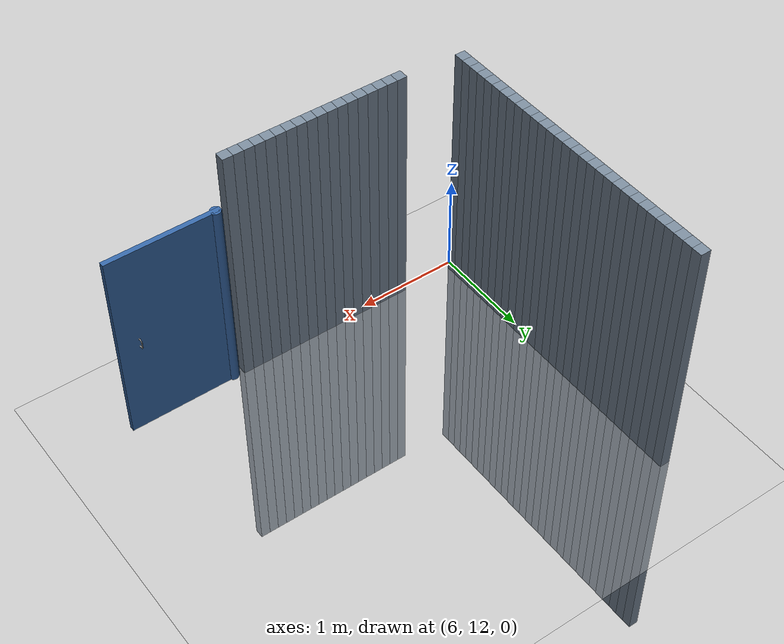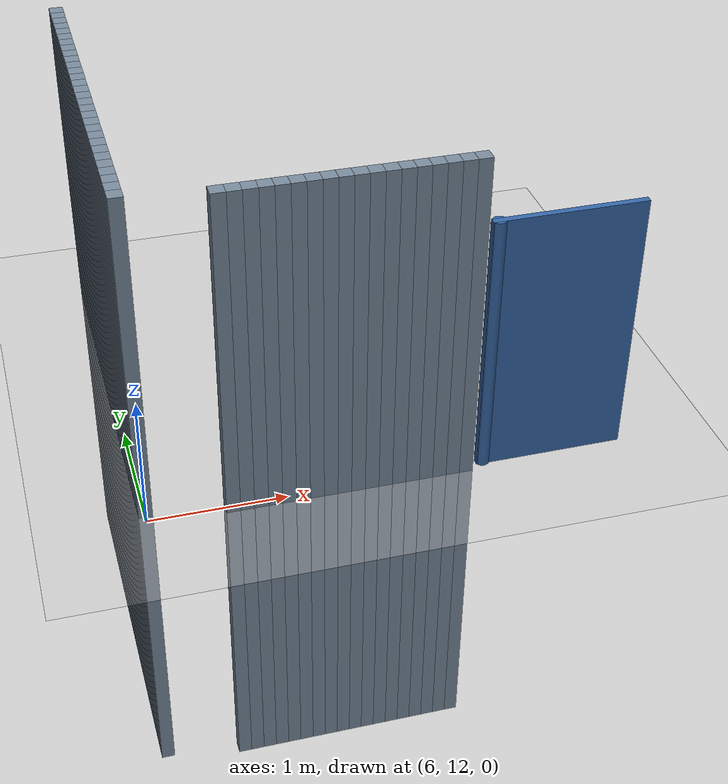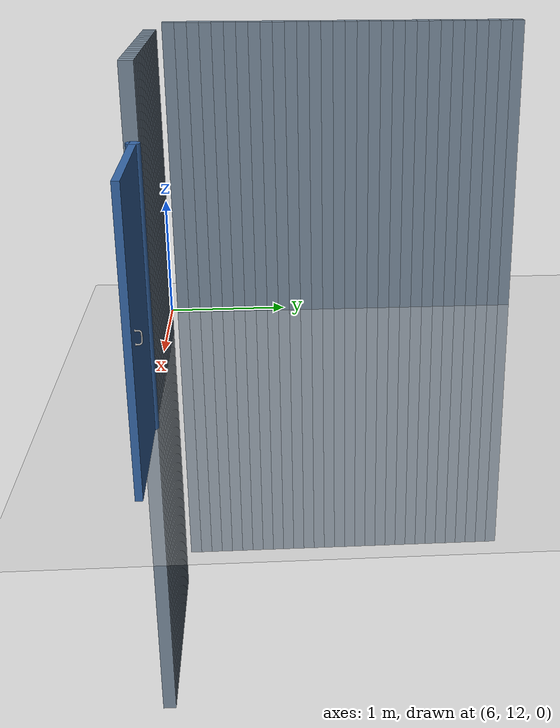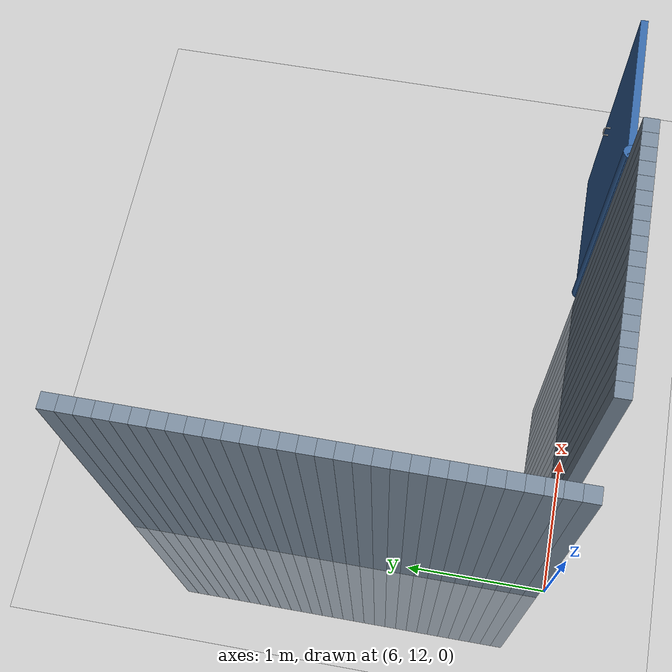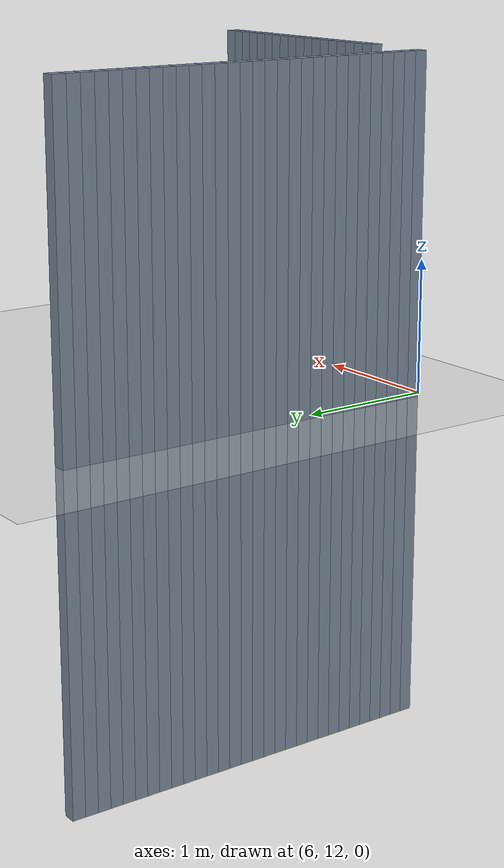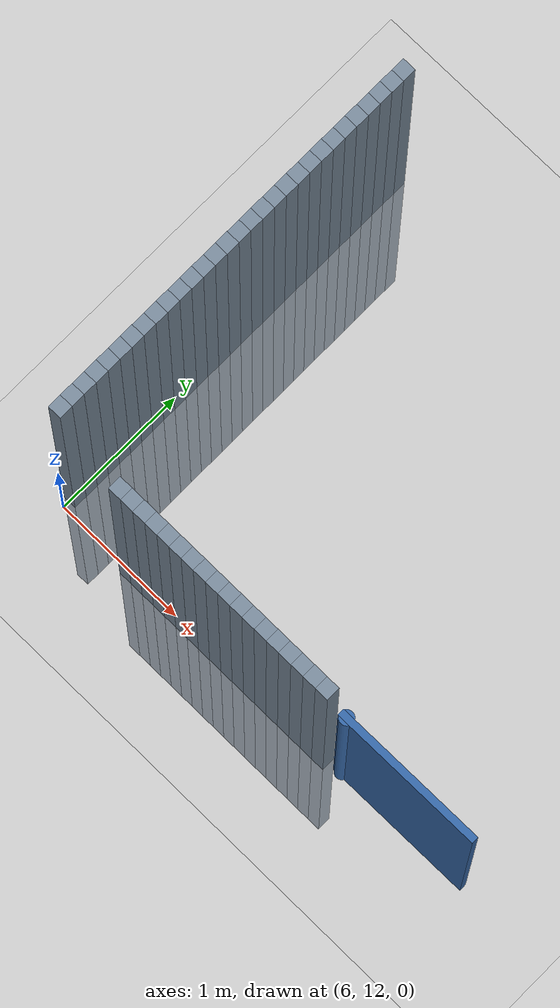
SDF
<sdf version="1.6">
 <world name="default">
  <model name="ground_plane">
   <static>1</static>
   <link name="link">
    <collision name="collision">
     <geometry><plane><normal>0 0 1</normal><size>100 100</size></plane></geometry>
     <surface><friction><ode><mu>100</mu><mu2>50</mu2></ode></friction></surface>
    </collision>
    <visual name="visual">
     <cast_shadows>0</cast_shadows>
     <geometry><plane><normal>0 0 1</normal><size>100 100</size></plane></geometry>
     <material>
      <script><uri>file://media/materials/scripts/gazebo.material</uri><name>Gazebo/Grey</name></script>
     </material>
    </visual>
   </link>
  </model>
  <model name="unit_cylinder_302">
   <static>1</static>
   <pose>6 12.1 0 0 -0 0</pose>
   <link name="link">
    <inertial>
     <mass>1</mass>
     <inertia><ixx>0.145833</ixx><ixy>0</ixy><ixz>0</ixz><iyy>0.145833</iyy><iyz>0</iyz><izz>0.125</izz></inertia>
    </inertial>
    <collision name="collision"><geometry><box><size>0.1 0.1 5</size></box></geometry></collision>
    <visual name="visual">
     <geometry><box><size>0.1 0.1 5</size></box></geometry>
     <material><ambient>0.466667 0.533333 0.6 1</ambient><diffuse>0.466667 0.533333 0.6 1</diffuse></material>
     <material>
      <script><name>Gazebo/Grey</name><uri>file://media/materials/scripts/gazebo.material</uri></script>
     </material>
    </visual>
   </link>
  </model>
  <model name="unit_cylinder_303">
   <static>1</static>
   <pose>6 12.2 0 0 -0 0</pose>
   <link name="link">
    <inertial>
     <mass>1</mass>
     <inertia><ixx>0.145833</ixx><ixy>0</ixy><ixz>0</ixz><iyy>0.145833</iyy><iyz>0</iyz><izz>0.125</izz></inertia>
    </inertial>
    <collision name="collision"><geometry><box><size>0.1 0.1 5</size></box></geometry></collision>
    <visual name="visual">
     <geometry><box><size>0.1 0.1 5</size></box></geometry>
     <material><ambient>0.466667 0.533333 0.6 1</ambient><diffuse>0.466667 0.533333 0.6 1</diffuse></material>
     <material>
      <script><name>Gazebo/Grey</name><uri>file://media/materials/scripts/gazebo.material</uri></script>
     </material>
    </visual>
   </link>
  </model>
  <model name="unit_cylinder_304">
   <static>1</static>
   <pose>6 12.3 0 0 -0 0</pose>
   <link name="link">
    <inertial>
     <mass>1</mass>
     <inertia><ixx>0.145833</ixx><ixy>0</ixy><ixz>0</ixz><iyy>0.145833</iyy><iyz>0</iyz><izz>0.125</izz></inertia>
    </inertial>
    <collision name="collision"><geometry><box><size>0.1 0.1 5</size></box></geometry></collision>
    <visual name="visual">
     <geometry><box><size>0.1 0.1 5</size></box></geometry>
     <material><ambient>0.466667 0.533333 0.6 1</ambient><diffuse>0.466667 0.533333 0.6 1</diffuse></material>
     <material>
      <script><name>Gazebo/Grey</name><uri>file://media/materials/scripts/gazebo.material</uri></script>
     </material>
    </visual>
   </link>
  </model>
  <model name="unit_cylinder_305">
   <static>1</static>
   <pose>6 12.4 0 0 -0 0</pose>
   <link name="link">
    <inertial>
     <mass>1</mass>
     <inertia><ixx>0.145833</ixx><ixy>0</ixy><ixz>0</ixz><iyy>0.145833</iyy><iyz>0</iyz><izz>0.125</izz></inertia>
    </inertial>
    <collision name="collision"><geometry><box><size>0.1 0.1 5</size></box></geometry></collision>
    <visual name="visual">
     <geometry><box><size>0.1 0.1 5</size></box></geometry>
     <material><ambient>0.466667 0.533333 0.6 1</ambient><diffuse>0.466667 0.533333 0.6 1</diffuse></material>
     <material>
      <script><name>Gazebo/Grey</name><uri>file://media/materials/scripts/gazebo.material</uri></script>
     </material>
    </visual>
   </link>
  </model>
  <model name="unit_cylinder_306">
   <static>1</static>
   <pose>6 12.5 0 0 -0 0</pose>
   <link name="link">
    <inertial>
     <mass>1</mass>
     <inertia><ixx>0.145833</ixx><ixy>0</ixy><ixz>0</ixz><iyy>0.145833</iyy><iyz>0</iyz><izz>0.125</izz></inertia>
    </inertial>
    <collision name="collision"><geometry><box><size>0.1 0.1 5</size></box></geometry></collision>
    <visual name="visual">
     <geometry><box><size>0.1 0.1 5</size></box></geometry>
     <material><ambient>0.466667 0.533333 0.6 1</ambient><diffuse>0.466667 0.533333 0.6 1</diffuse></material>
     <material>
      <script><name>Gazebo/Grey</name><uri>file://media/materials/scripts/gazebo.material</uri></script>
     </material>
    </visual>
   </link>
  </model>
  <model name="unit_cylinder_307">
   <static>1</static>
   <pose>6 12.6 0 0 -0 0</pose>
   <link name="link">
    <inertial>
     <mass>1</mass>
     <inertia><ixx>0.145833</ixx><ixy>0</ixy><ixz>0</ixz><iyy>0.145833</iyy><iyz>0</iyz><izz>0.125</izz></inertia>
    </inertial>
    <collision name="collision"><geometry><box><size>0.1 0.1 5</size></box></geometry></collision>
    <visual name="visual">
     <geometry><box><size>0.1 0.1 5</size></box></geometry>
     <material><ambient>0.466667 0.533333 0.6 1</ambient><diffuse>0.466667 0.533333 0.6 1</diffuse></material>
     <material>
      <script><name>Gazebo/Grey</name><uri>file://media/materials/scripts/gazebo.material</uri></script>
     </material>
    </visual>
   </link>
  </model>
  <model name="unit_cylinder_308">
   <static>1</static>
   <pose>6 12.7 0 0 -0 0</pose>
   <link name="link">
    <inertial>
     <mass>1</mass>
     <inertia><ixx>0.145833</ixx><ixy>0</ixy><ixz>0</ixz><iyy>0.145833</iyy><iyz>0</iyz><izz>0.125</izz></inertia>
    </inertial>
    <collision name="collision"><geometry><box><size>0.1 0.1 5</size></box></geometry></collision>
    <visual name="visual">
     <geometry><box><size>0.1 0.1 5</size></box></geometry>
     <material><ambient>0.466667 0.533333 0.6 1</ambient><diffuse>0.466667 0.533333 0.6 1</diffuse></material>
     <material>
      <script><name>Gazebo/Grey</name><uri>file://media/materials/scripts/gazebo.material</uri></script>
     </material>
    </visual>
   </link>
  </model>
  <model name="unit_cylinder_309">
   <static>1</static>
   <pose>6 12.8 0 0 -0 0</pose>
   <link name="link">
    <inertial>
     <mass>1</mass>
     <inertia><ixx>0.145833</ixx><ixy>0</ixy><ixz>0</ixz><iyy>0.145833</iyy><iyz>0</iyz><izz>0.125</izz></inertia>
    </inertial>
    <collision name="collision"><geometry><box><size>0.1 0.1 5</size></box></geometry></collision>
    <visual name="visual">
     <geometry><box><size>0.1 0.1 5</size></box></geometry>
     <material><ambient>0.466667 0.533333 0.6 1</ambient><diffuse>0.466667 0.533333 0.6 1</diffuse></material>
     <material>
      <script><name>Gazebo/Grey</name><uri>file://media/materials/scripts/gazebo.material</uri></script>
     </material>
    </visual>
   </link>
  </model>
  <model name="unit_cylinder_310">
   <static>1</static>
   <pose>6 12.9 0 0 -0 0</pose>
   <link name="link">
    <inertial>
     <mass>1</mass>
     <inertia><ixx>0.145833</ixx><ixy>0</ixy><ixz>0</ixz><iyy>0.145833</iyy><iyz>0</iyz><izz>0.125</izz></inertia>
    </inertial>
    <collision name="collision"><geometry><box><size>0.1 0.1 5</size></box></geometry></collision>
    <visual name="visual">
     <geometry><box><size>0.1 0.1 5</size></box></geometry>
     <material><ambient>0.466667 0.533333 0.6 1</ambient><diffuse>0.466667 0.533333 0.6 1</diffuse></material>
     <material>
      <script><name>Gazebo/Grey</name><uri>file://media/materials/scripts/gazebo.material</uri></script>
     </material>
    </visual>
   </link>
  </model>
  <model name="unit_cylinder_311">
   <static>1</static>
   <pose>6 13 0 0 -0 0</pose>
   <link name="link">
    <inertial>
     <mass>1</mass>
     <inertia><ixx>0.145833</ixx><ixy>0</ixy><ixz>0</ixz><iyy>0.145833</iyy><iyz>0</iyz><izz>0.125</izz></inertia>
    </inertial>
    <collision name="collision"><geometry><box><size>0.1 0.1 5</size></box></geometry></collision>
    <visual name="visual">
     <geometry><box><size>0.1 0.1 5</size></box></geometry>
     <material><ambient>0.466667 0.533333 0.6 1</ambient><diffuse>0.466667 0.533333 0.6 1</diffuse></material>
     <material>
      <script><name>Gazebo/Grey</name><uri>file://media/materials/scripts/gazebo.material</uri></script>
     </material>
    </visual>
   </link>
  </model>
  <model name="unit_cylinder_312">
   <static>1</static>
   <pose>6 13.1 0 0 -0 0</pose>
   <link name="link">
    <inertial>
     <mass>1</mass>
     <inertia><ixx>0.145833</ixx><ixy>0</ixy><ixz>0</ixz><iyy>0.145833</iyy><iyz>0</iyz><izz>0.125</izz></inertia>
    </inertial>
    <collision name="collision"><geometry><box><size>0.1 0.1 5</size></box></geometry></collision>
    <visual name="visual">
     <geometry><box><size>0.1 0.1 5</size></box></geometry>
     <material><ambient>0.466667 0.533333 0.6 1</ambient><diffuse>0.466667 0.533333 0.6 1</diffuse></material>
     <material>
      <script><name>Gazebo/Grey</name><uri>file://media/materials/scripts/gazebo.material</uri></script>
     </material>
    </visual>
   </link>
  </model>
  <model name="unit_cylinder_313">
   <static>1</static>
   <pose>6 13.2 0 0 -0 0</pose>
   <link name="link">
    <inertial>
     <mass>1</mass>
     <inertia><ixx>0.145833</ixx><ixy>0</ixy><ixz>0</ixz><iyy>0.145833</iyy><iyz>0</iyz><izz>0.125</izz></inertia>
    </inertial>
    <collision name="collision"><geometry><box><size>0.1 0.1 5</size></box></geometry></collision>
    <visual name="visual">
     <geometry><box><size>0.1 0.1 5</size></box></geometry>
     <material><ambient>0.466667 0.533333 0.6 1</ambient><diffuse>0.466667 0.533333 0.6 1</diffuse></material>
     <material>
      <script><name>Gazebo/Grey</name><uri>file://media/materials/scripts/gazebo.material</uri></script>
     </material>
    </visual>
   </link>
  </model>
  <model name="unit_cylinder_314">
   <static>1</static>
   <pose>6 13.3 0 0 -0 0</pose>
   <link name="link">
    <inertial>
     <mass>1</mass>
     <inertia><ixx>0.145833</ixx><ixy>0</ixy><ixz>0</ixz><iyy>0.145833</iyy><iyz>0</iyz><izz>0.125</izz></inertia>
    </inertial>
    <collision name="collision"><geometry><box><size>0.1 0.1 5</size></box></geometry></collision>
    <visual name="visual">
     <geometry><box><size>0.1 0.1 5</size></box></geometry>
     <material><ambient>0.466667 0.533333 0.6 1</ambient><diffuse>0.466667 0.533333 0.6 1</diffuse></material>
     <material>
      <script><name>Gazebo/Grey</name><uri>file://media/materials/scripts/gazebo.material</uri></script>
     </material>
    </visual>
   </link>
  </model>
  <model name="unit_cylinder_315">
   <static>1</static>
   <pose>6 13.4 0 0 -0 0</pose>
   <link name="link">
    <inertial>
     <mass>1</mass>
     <inertia><ixx>0.145833</ixx><ixy>0</ixy><ixz>0</ixz><iyy>0.145833</iyy><iyz>0</iyz><izz>0.125</izz></inertia>
    </inertial>
    <collision name="collision"><geometry><box><size>0.1 0.1 5</size></box></geometry></collision>
    <visual name="visual">
     <geometry><box><size>0.1 0.1 5</size></box></geometry>
     <material><ambient>0.466667 0.533333 0.6 1</ambient><diffuse>0.466667 0.533333 0.6 1</diffuse></material>
     <material>
      <script><name>Gazebo/Grey</name><uri>file://media/materials/scripts/gazebo.material</uri></script>
     </material>
    </visual>
   </link>
  </model>
  <model name="unit_cylinder_316">
   <static>1</static>
   <pose>6 13.5 0 0 -0 0</pose>
   <link name="link">
    <inertial>
     <mass>1</mass>
     <inertia><ixx>0.145833</ixx><ixy>0</ixy><ixz>0</ixz><iyy>0.145833</iyy><iyz>0</iyz><izz>0.125</izz></inertia>
    </inertial>
    <collision name="collision"><geometry><box><size>0.1 0.1 5</size></box></geometry></collision>
    <visual name="visual">
     <geometry><box><size>0.1 0.1 5</size></box></geometry>
     <material><ambient>0.466667 0.533333 0.6 1</ambient><diffuse>0.466667 0.533333 0.6 1</diffuse></material>
     <material>
      <script><name>Gazebo/Grey</name><uri>file://media/materials/scripts/gazebo.material</uri></script>
     </material>
    </visual>
   </link>
  </model>
  <model name="unit_cylinder_317">
   <static>1</static>
   <pose>6 13.6 0 0 -0 0</pose>
   <link name="link">
    <inertial>
     <mass>1</mass>
     <inertia><ixx>0.145833</ixx><ixy>0</ixy><ixz>0</ixz><iyy>0.145833</iyy><iyz>0</iyz><izz>0.125</izz></inertia>
    </inertial>
    <collision name="collision"><geometry><box><size>0.1 0.1 5</size></box></geometry></collision>
    <visual name="visual">
     <geometry><box><size>0.1 0.1 5</size></box></geometry>
     <material><ambient>0.466667 0.533333 0.6 1</ambient><diffuse>0.466667 0.533333 0.6 1</diffuse></material>
     <material>
      <script><name>Gazebo/Grey</name><uri>file://media/materials/scripts/gazebo.material</uri></script>
     </material>
    </visual>
   </link>
  </model>
  <model name="unit_cylinder_318">
   <static>1</static>
   <pose>6 13.7 0 0 -0 0</pose>
   <link name="link">
    <inertial>
     <mass>1</mass>
     <inertia><ixx>0.145833</ixx><ixy>0</ixy><ixz>0</ixz><iyy>0.145833</iyy><iyz>0</iyz><izz>0.125</izz></inertia>
    </inertial>
    <collision name="collision"><geometry><box><size>0.1 0.1 5</size></box></geometry></collision>
    <visual name="visual">
     <geometry><box><size>0.1 0.1 5</size></box></geometry>
     <material><ambient>0.466667 0.533333 0.6 1</ambient><diffuse>0.466667 0.533333 0.6 1</diffuse></material>
     <material>
      <script><name>Gazebo/Grey</name><uri>file://media/materials/scripts/gazebo.material</uri></script>
     </material>
    </visual>
   </link>
  </model>
  <model name="unit_cylinder_319">
   <static>1</static>
   <pose>6 13.8 0 0 -0 0</pose>
   <link name="link">
    <inertial>
     <mass>1</mass>
     <inertia><ixx>0.145833</ixx><ixy>0</ixy><ixz>0</ixz><iyy>0.145833</iyy><iyz>0</iyz><izz>0.125</izz></inertia>
    </inertial>
    <collision name="collision"><geometry><box><size>0.1 0.1 5</size></box></geometry></collision>
    <visual name="visual">
     <geometry><box><size>0.1 0.1 5</size></box></geometry>
     <material><ambient>0.466667 0.533333 0.6 1</ambient><diffuse>0.466667 0.533333 0.6 1</diffuse></material>
     <material>
      <script><name>Gazebo/Grey</name><uri>file://media/materials/scripts/gazebo.material</uri></script>
     </material>
    </visual>
   </link>
  </model>
  <model name="unit_cylinder_320">
   <static>1</static>
   <pose>6 13.9 0 0 -0 0</pose>
   <link name="link">
    <inertial>
     <mass>1</mass>
     <inertia><ixx>0.145833</ixx><ixy>0</ixy><ixz>0</ixz><iyy>0.145833</iyy><iyz>0</iyz><izz>0.125</izz></inertia>
    </inertial>
    <collision name="collision"><geometry><box><size>0.1 0.1 5</size></box></geometry></collision>
    <visual name="visual">
     <geometry><box><size>0.1 0.1 5</size></box></geometry>
     <material><ambient>0.466667 0.533333 0.6 1</ambient><diffuse>0.466667 0.533333 0.6 1</diffuse></material>
     <material>
      <script><name>Gazebo/Grey</name><uri>file://media/materials/scripts/gazebo.material</uri></script>
     </material>
    </visual>
   </link>
  </model>
  <model name="unit_cylinder_321">
   <static>1</static>
   <pose>6 14 0 0 -0 0</pose>
   <link name="link">
    <inertial>
     <mass>1</mass>
     <inertia><ixx>0.145833</ixx><ixy>0</ixy><ixz>0</ixz><iyy>0.145833</iyy><iyz>0</iyz><izz>0.125</izz></inertia>
    </inertial>
    <collision name="collision"><geometry><box><size>0.1 0.1 5</size></box></geometry></collision>
    <visual name="visual">
     <geometry><box><size>0.1 0.1 5</size></box></geometry>
     <material><ambient>0.466667 0.533333 0.6 1</ambient><diffuse>0.466667 0.533333 0.6 1</diffuse></material>
     <material>
      <script><name>Gazebo/Grey</name><uri>file://media/materials/scripts/gazebo.material</uri></script>
     </material>
    </visual>
   </link>
  </model>
  <model name="unit_cylinder_322">
   <static>1</static>
   <pose>6 14.1 0 0 -0 0</pose>
   <link name="link">
    <inertial>
     <mass>1</mass>
     <inertia><ixx>0.145833</ixx><ixy>0</ixy><ixz>0</ixz><iyy>0.145833</iyy><iyz>0</iyz><izz>0.125</izz></inertia>
    </inertial>
    <collision name="collision"><geometry><box><size>0.1 0.1 5</size></box></geometry></collision>
    <visual name="visual">
     <geometry><box><size>0.1 0.1 5</size></box></geometry>
     <material><ambient>0.466667 0.533333 0.6 1</ambient><diffuse>0.466667 0.533333 0.6 1</diffuse></material>
     <material>
      <script><name>Gazebo/Grey</name><uri>file://media/materials/scripts/gazebo.material</uri></script>
     </material>
    </visual>
   </link>
  </model>
  <model name="unit_cylinder_323">
   <static>1</static>
   <pose>6 14.2 0 0 -0 0</pose>
   <link name="link">
    <inertial>
     <mass>1</mass>
     <inertia><ixx>0.145833</ixx><ixy>0</ixy><ixz>0</ixz><iyy>0.145833</iyy><iyz>0</iyz><izz>0.125</izz></inertia>
    </inertial>
    <collision name="collision"><geometry><box><size>0.1 0.1 5</size></box></geometry></collision>
    <visual name="visual">
     <geometry><box><size>0.1 0.1 5</size></box></geometry>
     <material><ambient>0.466667 0.533333 0.6 1</ambient><diffuse>0.466667 0.533333 0.6 1</diffuse></material>
     <material>
      <script><name>Gazebo/Grey</name><uri>file://media/materials/scripts/gazebo.material</uri></script>
     </material>
    </visual>
   </link>
  </model>
  <model name="unit_cylinder_324">
   <static>1</static>
   <pose>6 14.3 0 0 -0 0</pose>
   <link name="link">
    <inertial>
     <mass>1</mass>
     <inertia><ixx>0.145833</ixx><ixy>0</ixy><ixz>0</ixz><iyy>0.145833</iyy><iyz>0</iyz><izz>0.125</izz></inertia>
    </inertial>
    <collision name="collision"><geometry><box><size>0.1 0.1 5</size></box></geometry></collision>
    <visual name="visual">
     <geometry><box><size>0.1 0.1 5</size></box></geometry>
     <material><ambient>0.466667 0.533333 0.6 1</ambient><diffuse>0.466667 0.533333 0.6 1</diffuse></material>
     <material>
      <script><name>Gazebo/Grey</name><uri>file://media/materials/scripts/gazebo.material</uri></script>
     </material>
    </visual>
   </link>
  </model>
  <model name="unit_cylinder_325">
   <static>1</static>
   <pose>6 14.4 0 0 -0 0</pose>
   <link name="link">
    <inertial>
     <mass>1</mass>
     <inertia><ixx>0.145833</ixx><ixy>0</ixy><ixz>0</ixz><iyy>0.145833</iyy><iyz>0</iyz><izz>0.125</izz></inertia>
    </inertial>
    <collision name="collision"><geometry><box><size>0.1 0.1 5</size></box></geometry></collision>
    <visual name="visual">
     <geometry><box><size>0.1 0.1 5</size></box></geometry>
     <material><ambient>0.466667 0.533333 0.6 1</ambient><diffuse>0.466667 0.533333 0.6 1</diffuse></material>
     <material>
      <script><name>Gazebo/Grey</name><uri>file://media/materials/scripts/gazebo.material</uri></script>
     </material>
    </visual>
   </link>
  </model>
  <model name="unit_cylinder_326">
   <static>1</static>
   <pose>6 14.5 0 0 -0 0</pose>
   <link name="link">
    <inertial>
     <mass>1</mass>
     <inertia><ixx>0.145833</ixx><ixy>0</ixy><ixz>0</ixz><iyy>0.145833</iyy><iyz>0</iyz><izz>0.125</izz></inertia>
    </inertial>
    <collision name="collision"><geometry><box><size>0.1 0.1 5</size></box></geometry></collision>
    <visual name="visual">
     <geometry><box><size>0.1 0.1 5</size></box></geometry>
     <material><ambient>0.466667 0.533333 0.6 1</ambient><diffuse>0.466667 0.533333 0.6 1</diffuse></material>
     <material>
      <script><name>Gazebo/Grey</name><uri>file://media/materials/scripts/gazebo.material</uri></script>
     </material>
    </visual>
   </link>
  </model>
  <model name="unit_cylinder_327">
   <static>1</static>
   <pose>6 14.6 0 0 -0 0</pose>
   <link name="link">
    <inertial>
     <mass>1</mass>
     <inertia><ixx>0.145833</ixx><ixy>0</ixy><ixz>0</ixz><iyy>0.145833</iyy><iyz>0</iyz><izz>0.125</izz></inertia>
    </inertial>
    <collision name="collision"><geometry><box><size>0.1 0.1 5</size></box></geometry></collision>
    <visual name="visual">
     <geometry><box><size>0.1 0.1 5</size></box></geometry>
     <material><ambient>0.466667 0.533333 0.6 1</ambient><diffuse>0.466667 0.533333 0.6 1</diffuse></material>
     <material>
      <script><name>Gazebo/Grey</name><uri>file://media/materials/scripts/gazebo.material</uri></script>
     </material>
    </visual>
   </link>
  </model>
  <model name="unit_cylinder_328">
   <static>1</static>
   <pose>6 14.7 0 0 -0 0</pose>
   <link name="link">
    <inertial>
     <mass>1</mass>
     <inertia><ixx>0.145833</ixx><ixy>0</ixy><ixz>0</ixz><iyy>0.145833</iyy><iyz>0</iyz><izz>0.125</izz></inertia>
    </inertial>
    <collision name="collision"><geometry><box><size>0.1 0.1 5</size></box></geometry></collision>
    <visual name="visual">
     <geometry><box><size>0.1 0.1 5</size></box></geometry>
     <material><ambient>0.466667 0.533333 0.6 1</ambient><diffuse>0.466667 0.533333 0.6 1</diffuse></material>
     <material>
      <script><name>Gazebo/Grey</name><uri>file://media/materials/scripts/gazebo.material</uri></script>
     </material>
    </visual>
   </link>
  </model>
  <model name="unit_cylinder_329">
   <static>1</static>
   <pose>6 14.8 0 0 -0 0</pose>
   <link name="link">
    <inertial>
     <mass>1</mass>
     <inertia><ixx>0.145833</ixx><ixy>0</ixy><ixz>0</ixz><iyy>0.145833</iyy><iyz>0</iyz><izz>0.125</izz></inertia>
    </inertial>
    <collision name="collision"><geometry><box><size>0.1 0.1 5</size></box></geometry></collision>
    <visual name="visual">
     <geometry><box><size>0.1 0.1 5</size></box></geometry>
     <material><ambient>0.466667 0.533333 0.6 1</ambient><diffuse>0.466667 0.533333 0.6 1</diffuse></material>
     <material>
      <script><name>Gazebo/Grey</name><uri>file://media/materials/scripts/gazebo.material</uri></script>
     </material>
    </visual>
   </link>
  </model>
  <model name="unit_cylinder_330">
   <static>1</static>
   <pose>6 14.9 0 0 -0 0</pose>
   <link name="link">
    <inertial>
     <mass>1</mass>
     <inertia><ixx>0.145833</ixx><ixy>0</ixy><ixz>0</ixz><iyy>0.145833</iyy><iyz>0</iyz><izz>0.125</izz></inertia>
    </inertial>
    <collision name="collision"><geometry><box><size>0.1 0.1 5</size></box></geometry></collision>
    <visual name="visual">
     <geometry><box><size>0.1 0.1 5</size></box></geometry>
     <material><ambient>0.466667 0.533333 0.6 1</ambient><diffuse>0.466667 0.533333 0.6 1</diffuse></material>
     <material>
      <script><name>Gazebo/Grey</name><uri>file://media/materials/scripts/gazebo.material</uri></script>
     </material>
    </visual>
   </link>
  </model>
  <model name="unit_cylinder_331">
   <static>1</static>
   <pose>6 15 0 0 -0 0</pose>
   <link name="link">
    <inertial>
     <mass>1</mass>
     <inertia><ixx>0.145833</ixx><ixy>0</ixy><ixz>0</ixz><iyy>0.145833</iyy><iyz>0</iyz><izz>0.125</izz></inertia>
    </inertial>
    <collision name="collision"><geometry><box><size>0.1 0.1 5</size></box></geometry></collision>
    <visual name="visual">
     <geometry><box><size>0.1 0.1 5</size></box></geometry>
     <material><ambient>0.466667 0.533333 0.6 1</ambient><diffuse>0.466667 0.533333 0.6 1</diffuse></material>
     <material>
      <script><name>Gazebo/Grey</name><uri>file://media/materials/scripts/gazebo.material</uri></script>
     </material>
    </visual>
   </link>
  </model>
  <model name="unit_cylinder_384">
   <static>1</static>
   <pose>6.6 12 0 0 -0 0</pose>
   <link name="link">
    <inertial>
     <mass>1</mass>
     <inertia><ixx>0.145833</ixx><ixy>0</ixy><ixz>0</ixz><iyy>0.145833</iyy><iyz>0</iyz><izz>0.125</izz></inertia>
    </inertial>
    <collision name="collision"><geometry><box><size>0.1 0.1 5</size></box></geometry></collision>
    <visual name="visual">
     <geometry><box><size>0.1 0.1 5</size></box></geometry>
     <material><ambient>0.466667 0.533333 0.6 1</ambient><diffuse>0.466667 0.533333 0.6 1</diffuse></material>
     <material>
      <script><name>Gazebo/Grey</name><uri>file://media/materials/scripts/gazebo.material</uri></script>
     </material>
    </visual>
   </link>
  </model>
  <model name="unit_cylinder_388">
   <static>1</static>
   <pose>6.7 12 0 0 -0 0</pose>
   <link name="link">
    <inertial>
     <mass>1</mass>
     <inertia><ixx>0.145833</ixx><ixy>0</ixy><ixz>0</ixz><iyy>0.145833</iyy><iyz>0</iyz><izz>0.125</izz></inertia>
    </inertial>
    <collision name="collision"><geometry><box><size>0.1 0.1 5</size></box></geometry></collision>
    <visual name="visual">
     <geometry><box><size>0.1 0.1 5</size></box></geometry>
     <material><ambient>0.466667 0.533333 0.6 1</ambient><diffuse>0.466667 0.533333 0.6 1</diffuse></material>
     <material>
      <script><name>Gazebo/Grey</name><uri>file://media/materials/scripts/gazebo.material</uri></script>
     </material>
    </visual>
   </link>
  </model>
  <model name="unit_cylinder_392">
   <static>1</static>
   <pose>6.8 12 0 0 -0 0</pose>
   <link name="link">
    <inertial>
     <mass>1</mass>
     <inertia><ixx>0.145833</ixx><ixy>0</ixy><ixz>0</ixz><iyy>0.145833</iyy><iyz>0</iyz><izz>0.125</izz></inertia>
    </inertial>
    <collision name="collision"><geometry><box><size>0.1 0.1 5</size></box></geometry></collision>
    <visual name="visual">
     <geometry><box><size>0.1 0.1 5</size></box></geometry>
     <material><ambient>0.466667 0.533333 0.6 1</ambient><diffuse>0.466667 0.533333 0.6 1</diffuse></material>
     <material>
      <script><name>Gazebo/Grey</name><uri>file://media/materials/scripts/gazebo.material</uri></script>
     </material>
    </visual>
   </link>
  </model>
  <model name="unit_cylinder_396">
   <static>1</static>
   <pose>6.9 12 0 0 -0 0</pose>
   <link name="link">
    <inertial>
     <mass>1</mass>
     <inertia><ixx>0.145833</ixx><ixy>0</ixy><ixz>0</ixz><iyy>0.145833</iyy><iyz>0</iyz><izz>0.125</izz></inertia>
    </inertial>
    <collision name="collision"><geometry><box><size>0.1 0.1 5</size></box></geometry></collision>
    <visual name="visual">
     <geometry><box><size>0.1 0.1 5</size></box></geometry>
     <material><ambient>0.466667 0.533333 0.6 1</ambient><diffuse>0.466667 0.533333 0.6 1</diffuse></material>
     <material>
      <script><name>Gazebo/Grey</name><uri>file://media/materials/scripts/gazebo.material</uri></script>
     </material>
    </visual>
   </link>
  </model>
  <model name="unit_cylinder_400">
   <static>1</static>
   <pose>7 12 0 0 -0 0</pose>
   <link name="link">
    <inertial>
     <mass>1</mass>
     <inertia><ixx>0.145833</ixx><ixy>0</ixy><ixz>0</ixz><iyy>0.145833</iyy><iyz>0</iyz><izz>0.125</izz></inertia>
    </inertial>
    <collision name="collision"><geometry><box><size>0.1 0.1 5</size></box></geometry></collision>
    <visual name="visual">
     <geometry><box><size>0.1 0.1 5</size></box></geometry>
     <material><ambient>0.466667 0.533333 0.6 1</ambient><diffuse>0.466667 0.533333 0.6 1</diffuse></material>
     <material>
      <script><name>Gazebo/Grey</name><uri>file://media/materials/scripts/gazebo.material</uri></script>
     </material>
    </visual>
   </link>
  </model>
  <model name="unit_cylinder_404">
   <static>1</static>
   <pose>7.1 12 0 0 -0 0</pose>
   <link name="link">
    <inertial>
     <mass>1</mass>
     <inertia><ixx>0.145833</ixx><ixy>0</ixy><ixz>0</ixz><iyy>0.145833</iyy><iyz>0</iyz><izz>0.125</izz></inertia>
    </inertial>
    <collision name="collision"><geometry><box><size>0.1 0.1 5</size></box></geometry></collision>
    <visual name="visual">
     <geometry><box><size>0.1 0.1 5</size></box></geometry>
     <material><ambient>0.466667 0.533333 0.6 1</ambient><diffuse>0.466667 0.533333 0.6 1</diffuse></material>
     <material>
      <script><name>Gazebo/Grey</name><uri>file://media/materials/scripts/gazebo.material</uri></script>
     </material>
    </visual>
   </link>
  </model>
  <model name="unit_cylinder_408">
   <static>1</static>
   <pose>7.2 12 0 0 -0 0</pose>
   <link name="link">
    <inertial>
     <mass>1</mass>
     <inertia><ixx>0.145833</ixx><ixy>0</ixy><ixz>0</ixz><iyy>0.145833</iyy><iyz>0</iyz><izz>0.125</izz></inertia>
    </inertial>
    <collision name="collision"><geometry><box><size>0.1 0.1 5</size></box></geometry></collision>
    <visual name="visual">
     <geometry><box><size>0.1 0.1 5</size></box></geometry>
     <material><ambient>0.466667 0.533333 0.6 1</ambient><diffuse>0.466667 0.533333 0.6 1</diffuse></material>
     <material>
      <script><name>Gazebo/Grey</name><uri>file://media/materials/scripts/gazebo.material</uri></script>
     </material>
    </visual>
   </link>
  </model>
  <model name="unit_cylinder_412">
   <static>1</static>
   <pose>7.3 12 0 0 -0 0</pose>
   <link name="link">
    <inertial>
     <mass>1</mass>
     <inertia><ixx>0.145833</ixx><ixy>0</ixy><ixz>0</ixz><iyy>0.145833</iyy><iyz>0</iyz><izz>0.125</izz></inertia>
    </inertial>
    <collision name="collision"><geometry><box><size>0.1 0.1 5</size></box></geometry></collision>
    <visual name="visual">
     <geometry><box><size>0.1 0.1 5</size></box></geometry>
     <material><ambient>0.466667 0.533333 0.6 1</ambient><diffuse>0.466667 0.533333 0.6 1</diffuse></material>
     <material>
      <script><name>Gazebo/Grey</name><uri>file://media/materials/scripts/gazebo.material</uri></script>
     </material>
    </visual>
   </link>
  </model>
  <model name="unit_cylinder_416">
   <static>1</static>
   <pose>7.4 12 0 0 -0 0</pose>
   <link name="link">
    <inertial>
     <mass>1</mass>
     <inertia><ixx>0.145833</ixx><ixy>0</ixy><ixz>0</ixz><iyy>0.145833</iyy><iyz>0</iyz><izz>0.125</izz></inertia>
    </inertial>
    <collision name="collision"><geometry><box><size>0.1 0.1 5</size></box></geometry></collision>
    <visual name="visual">
     <geometry><box><size>0.1 0.1 5</size></box></geometry>
     <material><ambient>0.466667 0.533333 0.6 1</ambient><diffuse>0.466667 0.533333 0.6 1</diffuse></material>
     <material>
      <script><name>Gazebo/Grey</name><uri>file://media/materials/scripts/gazebo.material</uri></script>
     </material>
    </visual>
   </link>
  </model>
  <model name="unit_cylinder_420">
   <static>1</static>
   <pose>7.5 12 0 0 -0 0</pose>
   <link name="link">
    <inertial>
     <mass>1</mass>
     <inertia><ixx>0.145833</ixx><ixy>0</ixy><ixz>0</ixz><iyy>0.145833</iyy><iyz>0</iyz><izz>0.125</izz></inertia>
    </inertial>
    <collision name="collision"><geometry><box><size>0.1 0.1 5</size></box></geometry></collision>
    <visual name="visual">
     <geometry><box><size>0.1 0.1 5</size></box></geometry>
     <material><ambient>0.466667 0.533333 0.6 1</ambient><diffuse>0.466667 0.533333 0.6 1</diffuse></material>
     <material>
      <script><name>Gazebo/Grey</name><uri>file://media/materials/scripts/gazebo.material</uri></script>
     </material>
    </visual>
   </link>
  </model>
  <model name="unit_cylinder_424">
   <static>1</static>
   <pose>7.6 12 0 0 -0 0</pose>
   <link name="link">
    <inertial>
     <mass>1</mass>
     <inertia><ixx>0.145833</ixx><ixy>0</ixy><ixz>0</ixz><iyy>0.145833</iyy><iyz>0</iyz><izz>0.125</izz></inertia>
    </inertial>
    <collision name="collision"><geometry><box><size>0.1 0.1 5</size></box></geometry></collision>
    <visual name="visual">
     <geometry><box><size>0.1 0.1 5</size></box></geometry>
     <material><ambient>0.466667 0.533333 0.6 1</ambient><diffuse>0.466667 0.533333 0.6 1</diffuse></material>
     <material>
      <script><name>Gazebo/Grey</name><uri>file://media/materials/scripts/gazebo.material</uri></script>
     </material>
    </visual>
   </link>
  </model>
  <model name="unit_cylinder_428">
   <static>1</static>
   <pose>7.7 12 0 0 -0 0</pose>
   <link name="link">
    <inertial>
     <mass>1</mass>
     <inertia><ixx>0.145833</ixx><ixy>0</ixy><ixz>0</ixz><iyy>0.145833</iyy><iyz>0</iyz><izz>0.125</izz></inertia>
    </inertial>
    <collision name="collision"><geometry><box><size>0.1 0.1 5</size></box></geometry></collision>
    <visual name="visual">
     <geometry><box><size>0.1 0.1 5</size></box></geometry>
     <material><ambient>0.466667 0.533333 0.6 1</ambient><diffuse>0.466667 0.533333 0.6 1</diffuse></material>
     <material>
      <script><name>Gazebo/Grey</name><uri>file://media/materials/scripts/gazebo.material</uri></script>
     </material>
    </visual>
   </link>
  </model>
  <model name="unit_cylinder_432">
   <static>1</static>
   <pose>7.8 12 0 0 -0 0</pose>
   <link name="link">
    <inertial>
     <mass>1</mass>
     <inertia><ixx>0.145833</ixx><ixy>0</ixy><ixz>0</ixz><iyy>0.145833</iyy><iyz>0</iyz><izz>0.125</izz></inertia>
    </inertial>
    <collision name="collision"><geometry><box><size>0.1 0.1 5</size></box></geometry></collision>
    <visual name="visual">
     <geometry><box><size>0.1 0.1 5</size></box></geometry>
     <material><ambient>0.466667 0.533333 0.6 1</ambient><diffuse>0.466667 0.533333 0.6 1</diffuse></material>
     <material>
      <script><name>Gazebo/Grey</name><uri>file://media/materials/scripts/gazebo.material</uri></script>
     </material>
    </visual>
   </link>
  </model>
  <model name="unit_cylinder_436">
   <static>1</static>
   <pose>7.9 12 0 0 -0 0</pose>
   <link name="link">
    <inertial>
     <mass>1</mass>
     <inertia><ixx>0.145833</ixx><ixy>0</ixy><ixz>0</ixz><iyy>0.145833</iyy><iyz>0</iyz><izz>0.125</izz></inertia>
    </inertial>
    <collision name="collision"><geometry><box><size>0.1 0.1 5</size></box></geometry></collision>
    <visual name="visual">
     <geometry><box><size>0.1 0.1 5</size></box></geometry>
     <material><ambient>0.466667 0.533333 0.6 1</ambient><diffuse>0.466667 0.533333 0.6 1</diffuse></material>
     <material>
      <script><name>Gazebo/Grey</name><uri>file://media/materials/scripts/gazebo.material</uri></script>
     </material>
    </visual>
   </link>
  </model>
  <model name="unit_cylinder_440">
   <static>1</static>
   <pose>8 12 0 0 -0 0</pose>
   <link name="link">
    <inertial>
     <mass>1</mass>
     <inertia><ixx>0.145833</ixx><ixy>0</ixy><ixz>0</ixz><iyy>0.145833</iyy><iyz>0</iyz><izz>0.125</izz></inertia>
    </inertial>
    <collision name="collision"><geometry><box><size>0.1 0.1 5</size></box></geometry></collision>
    <visual name="visual">
     <geometry><box><size>0.1 0.1 5</size></box></geometry>
     <material><ambient>0.466667 0.533333 0.6 1</ambient><diffuse>0.466667 0.533333 0.6 1</diffuse></material>
     <material>
      <script><name>Gazebo/Grey</name><uri>file://media/materials/scripts/gazebo.material</uri></script>
     </material>
    </visual>
   </link>
  </model>
  <model name="unit_cylinder_444">
   <static>1</static>
   <pose>8.1 12 0 0 -0 0</pose>
   <link name="link">
    <inertial>
     <mass>1</mass>
     <inertia><ixx>0.145833</ixx><ixy>0</ixy><ixz>0</ixz><iyy>0.145833</iyy><iyz>0</iyz><izz>0.125</izz></inertia>
    </inertial>
    <collision name="collision"><geometry><box><size>0.1 0.1 5</size></box></geometry></collision>
    <visual name="visual">
     <geometry><box><size>0.1 0.1 5</size></box></geometry>
     <material><ambient>0.466667 0.533333 0.6 1</ambient><diffuse>0.466667 0.533333 0.6 1</diffuse></material>
     <material>
      <script><name>Gazebo/Grey</name><uri>file://media/materials/scripts/gazebo.material</uri></script>
     </material>
    </visual>
   </link>
  </model>
  <model name="unit_cylinder_448">
   <static>1</static>
   <pose>8.2 12 0 0 -0 0</pose>
   <link name="link">
    <inertial>
     <mass>1</mass>
     <inertia><ixx>0.145833</ixx><ixy>0</ixy><ixz>0</ixz><iyy>0.145833</iyy><iyz>0</iyz><izz>0.125</izz></inertia>
    </inertial>
    <collision name="collision"><geometry><box><size>0.1 0.1 5</size></box></geometry></collision>
    <visual name="visual">
     <geometry><box><size>0.1 0.1 5</size></box></geometry>
     <material><ambient>0.466667 0.533333 0.6 1</ambient><diffuse>0.466667 0.533333 0.6 1</diffuse></material>
     <material>
      <script><name>Gazebo/Grey</name><uri>file://media/materials/scripts/gazebo.material</uri></script>
     </material>
    </visual>
   </link>
  </model>
  <model name="unit_cylinder_452">
   <static>1</static>
   <pose>8.3 12 0 0 -0 0</pose>
   <link name="link">
    <inertial>
     <mass>1</mass>
     <inertia><ixx>0.145833</ixx><ixy>0</ixy><ixz>0</ixz><iyy>0.145833</iyy><iyz>0</iyz><izz>0.125</izz></inertia>
    </inertial>
    <collision name="collision"><geometry><box><size>0.1 0.1 5</size></box></geometry></collision>
    <visual name="visual">
     <geometry><box><size>0.1 0.1 5</size></box></geometry>
     <material><ambient>0.466667 0.533333 0.6 1</ambient><diffuse>0.466667 0.533333 0.6 1</diffuse></material>
     <material>
      <script><name>Gazebo/Grey</name><uri>file://media/materials/scripts/gazebo.material</uri></script>
     </material>
    </visual>
   </link>
  </model>
  <model name="hinge_door_0">
   <link name="link_0">
    <inertial>
     <mass>0.11</mass>
     <inertia>
      <ixx>0.0366896</ixx>
      <ixy>0</ixy>
      <ixz>0</ixz>
      <iyy>0.0477583</iyy>
      <iyz>0</iyz>
      <izz>0.0111146</izz>
     </inertia>
    </inertial>
    <pose>0.25 0 1 0 -0 0</pose>
    <visual name="visual">
     <geometry><box><size>1.1 0.05 2</size></box></geometry>
     <material>
      <lighting>1</lighting>
      <script><uri>file://media/materials/scripts/gazebo.material</uri><name>Gazebo/Grey</name></script>
      <shader type="pixel"><normal_map>__default__</normal_map></shader>
      <ambient>0.204 0.396 0.643 1</ambient>
      <diffuse>0.7 0.7 0.7 1</diffuse>
      <specular>0.01 0.01 0.01 1</specular>
      <emissive>0 0 0 1</emissive>
     </material>
    </visual>
    <collision name="collision">
     <geometry><box><size>1.1 0.05 2</size></box></geometry>
     <surface>
      <friction>
       <ode><mu>1</mu><mu2>1</mu2><fdir1>0 0 0</fdir1><slip1>0</slip1><slip2>0</slip2></ode>
       <torsional>
        <coefficient>1</coefficient>
        <patch_radius>0</patch_radius>
        <surface_radius>0</surface_radius>
        <use_patch_radius>1</use_patch_radius>
        <ode><slip>0</slip></ode>
       </torsional>
      </friction>
      <bounce><restitution_coefficient>0</restitution_coefficient><threshold>1e+06</threshold></bounce>
      <contact>
       <collide_without_contact>0</collide_without_contact>
       <collide_without_contact_bitmask>1</collide_without_contact_bitmask>
       <collide_bitmask>1</collide_bitmask>
       <ode>
        <soft_cfm>0</soft_cfm>
        <soft_erp>0.2</soft_erp>
        <kp>1e+13</kp>
        <kd>1</kd>
        <max_vel>0.01</max_vel>
        <min_depth>0</min_depth>
       </ode>
       <bullet>
        <split_impulse>1</split_impulse>
        <split_impulse_penetration_threshold>-0.01</split_impulse_penetration_threshold>
        <soft_cfm>0</soft_cfm>
        <soft_erp>0.2</soft_erp>
        <kp>1e+13</kp>
        <kd>1</kd>
       </bullet>
      </contact>
     </surface>
    </collision>
   </link>
   <link name="link_1">
    <inertial>
     <mass>10.9956</mass>
     <inertia>
      <ixx>3.67206</ixx>
      <ixy>0</ixy>
      <ixz>0</ixz>
      <iyy>3.67206</iyy>
      <iyz>0</iyz>
      <izz>0.0137445</izz>
     </inertia>
    </inertial>
    <pose>-0.25 0 1 0 -0 0</pose>
    <visual name="visual">
     <geometry><cylinder><radius>0.05</radius><length>2</length></cylinder></geometry>
     <material>
      <lighting>1</lighting>
      <script><uri>file://media/materials/scripts/gazebo.material</uri><name>Gazebo/Grey</name></script>
      <shader type="pixel"><normal_map>__default__</normal_map></shader>
      <ambient>0.204 0.396 0.643 1</ambient>
      <diffuse>0.7 0.7 0.7 1</diffuse>
      <specular>0.01 0.01 0.01 1</specular>
      <emissive>0 0 0 1</emissive>
     </material>
    </visual>
    <collision name="collision">
     <geometry><cylinder><radius>0.05</radius><length>2</length></cylinder></geometry>
     <surface>
      <friction>
       <ode><mu>1</mu><mu2>1</mu2><fdir1>0 0 0</fdir1><slip1>0</slip1><slip2>0</slip2></ode>
       <torsional>
        <coefficient>1</coefficient>
        <patch_radius>0</patch_radius>
        <surface_radius>0</surface_radius>
        <use_patch_radius>1</use_patch_radius>
        <ode><slip>0</slip></ode>
       </torsional>
      </friction>
      <bounce><restitution_coefficient>0</restitution_coefficient><threshold>1e+06</threshold></bounce>
      <contact>
       <collide_without_contact>0</collide_without_contact>
       <collide_without_contact_bitmask>1</collide_without_contact_bitmask>
       <collide_bitmask>1</collide_bitmask>
       <ode>
        <soft_cfm>0</soft_cfm>
        <soft_erp>0.2</soft_erp>
        <kp>1e+13</kp>
        <kd>1</kd>
        <max_vel>0.01</max_vel>
        <min_depth>0</min_depth>
       </ode>
       <bullet>
        <split_impulse>1</split_impulse>
        <split_impulse_penetration_threshold>-0.01</split_impulse_penetration_threshold>
        <soft_cfm>0</soft_cfm>
        <soft_erp>0.2</soft_erp>
        <kp>1e+13</kp>
        <kd>1</kd>
       </bullet>
      </contact>
     </surface>
    </collision>
   </link>
   <link name="knob">
    <inertial>
     <mass>0.1</mass>
     <pose>0.6 0.065 1 0 -0 0</pose>
     <inertia>
      <ixx>3.67206</ixx>
      <ixy>0</ixy>
      <ixz>0</ixz>
      <iyy>3.67206</iyy>
      <iyz>0</iyz>
      <izz>0.0137445</izz>
     </inertia>
    </inertial>
    <pose>0.6 0.065 1 0 -0 0</pose>
    <visual name="visual">
     <pose>0 -0.04 0 1.57 0 3.14</pose>
     <geometry><mesh><uri>model://door/door_puller_knob.dae</uri></mesh></geometry>
    </visual>
    <collision name="collision">
     <pose>0 -0.04 0 1.57 0 3.14</pose>
     <geometry><mesh><uri>model://door/door_puller_knob.dae</uri></mesh></geometry>
     <surface>
      <friction><ode><mu>0.8</mu><mu2>0.8</mu2><slip1>0</slip1><slip2>0</slip2></ode></friction>
      <contact><ode><kp>1e+06</kp><kd>1</kd><max_vel>0</max_vel></ode></contact>
     </surface>
    </collision>
   </link>
   <joint name="hinge" type="revolute">
    <parent>link_1</parent>
    <child>link_0</child>
    <pose>-0.5 0 0 0 -0 0</pose>
    <axis>
     <xyz>0 0 1</xyz>
     <use_parent_model_frame>0</use_parent_model_frame>
     <limit><lower>-1.57</lower><upper>1.57</upper><effort>-1</effort><velocity>-1</velocity></limit>
     <dynamics>
      <spring_reference>0</spring_reference>
      <spring_stiffness>0</spring_stiffness>
      <damping>0</damping>
      <friction>0</friction>
     </dynamics>
    </axis>
    <physics>
     <ode><limit><cfm>0</cfm><erp>0.2</erp></limit><suspension><cfm>0</cfm><erp>0.2</erp></suspension></ode>
    </physics>
   </joint>
   <joint name="knob_link" type="fixed">
    <parent>link_0</parent>
    <child>knob</child>
    <axis>
     <xyz>0 0 1</xyz>
     <dynamics><spring_reference>0</spring_reference><spring_stiffness>0</spring_stiffness></dynamics>
     <use_parent_model_frame>0</use_parent_model_frame>
     <limit><lower>-1e+16</lower><upper>1e+16</upper></limit>
    </axis>
   </joint>
   <joint name="floor_link" type="fixed">
    <child>link_1</child>
    <parent>world</parent>
    <axis>
     <xyz>0 0 1</xyz>
     <dynamics><spring_reference>0</spring_reference><spring_stiffness>0</spring_stiffness></dynamics>
     <use_parent_model_frame>0</use_parent_model_frame>
     <limit><lower>-1e+16</lower><upper>1e+16</upper></limit>
    </axis>
   </joint>
   <pose>8.69705 12.0246 -0 0 -0 0.006743</pose>
  </model>
 </world>
</sdf>
